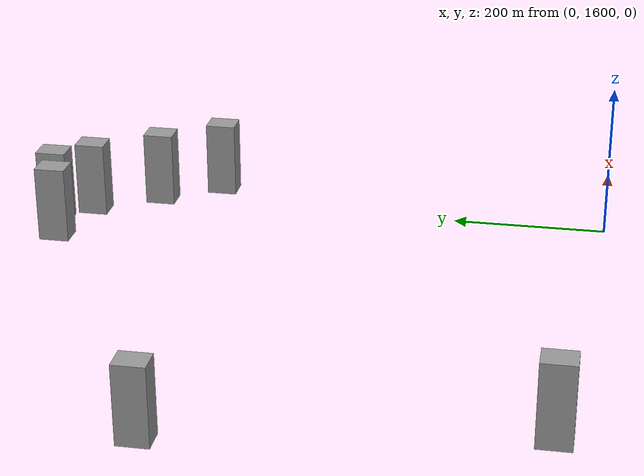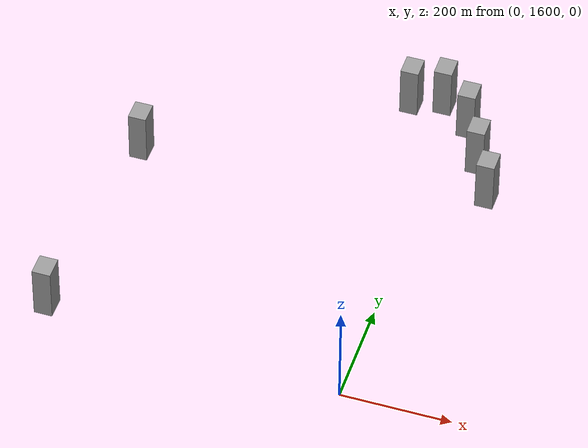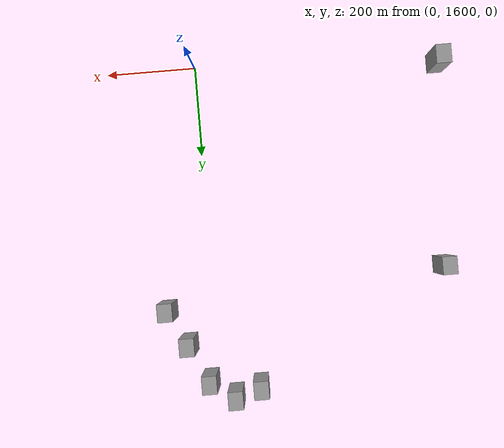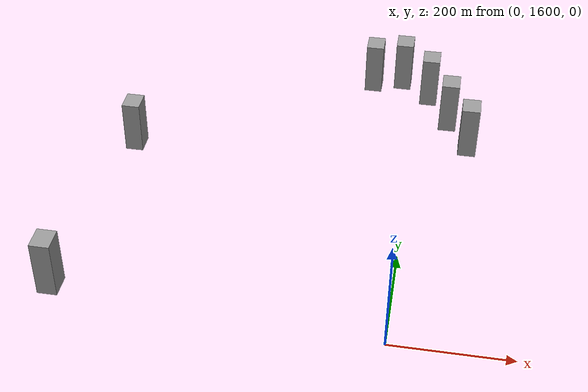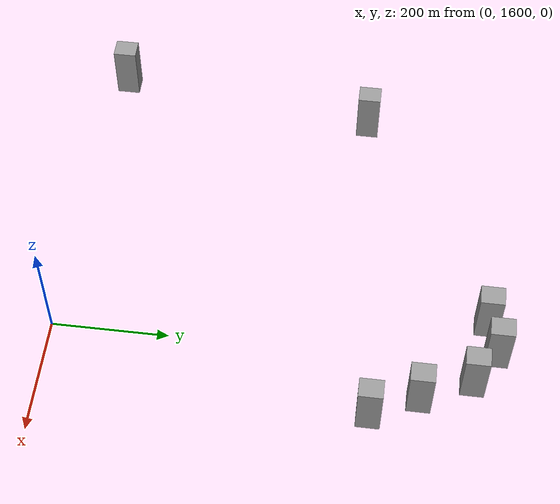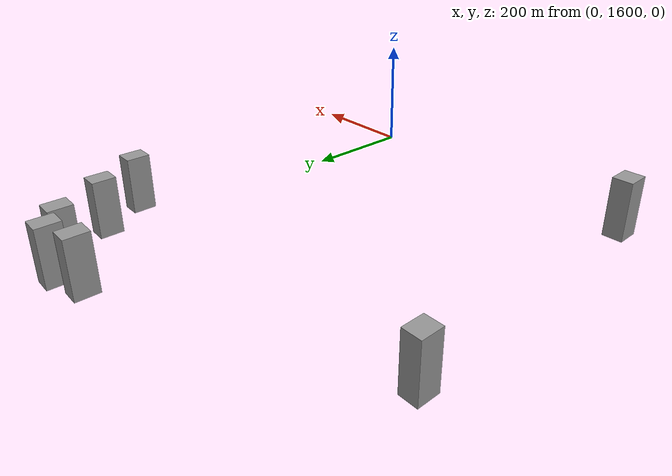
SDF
<sdf version="1.7">
 <world name="default">
  <model name="huge_building_92">
   <link name="link">
    <inertial>
     <mass>137299</mass>
     <inertia>
      <ixx>1.37911e+08</ixx>
      <ixy>0</ixy>
      <ixz>0</ixz>
      <iyy>1.32035e+08</iyy>
      <iyz>0</iyz>
      <izz>3.13216e+07</izz>
     </inertia>
    </inertial>
    <visual name="visual">
     <geometry><box><size>33.3468 40.3177 102.117</size></box></geometry>
     <material>
      <script><name>Gazebo/Grey</name><uri>file://media/materials/scripts/gazebo.material</uri></script>
      <shader type="pixel"/>
     </material>
    </visual>
    <collision name="collision">
     <geometry><box><size>33.3468 40.3177 102.117</size></box></geometry>
     <surface>
      <friction>
       <ode><mu>1</mu><mu2>1</mu2><fdir1>0 0 0</fdir1><slip1>0</slip1><slip2>0</slip2></ode>
       <torsional>
        <coefficient>1</coefficient>
        <patch_radius>0</patch_radius>
        <surface_radius>0</surface_radius>
        <use_patch_radius>1</use_patch_radius>
        <ode><slip>0</slip></ode>
       </torsional>
      </friction>
      <bounce><restitution_coefficient>0</restitution_coefficient><threshold>1e+06</threshold></bounce>
      <contact>
       <collide_without_contact>0</collide_without_contact>
       <collide_without_contact_bitmask>1</collide_without_contact_bitmask>
       <collide_bitmask>1</collide_bitmask>
       <ode>
        <soft_cfm>0</soft_cfm>
        <soft_erp>0.2</soft_erp>
        <kp>1e+13</kp>
        <kd>1</kd>
        <max_vel>0.01</max_vel>
        <min_depth>0</min_depth>
       </ode>
       <bullet>
        <split_impulse>1</split_impulse>
        <split_impulse_penetration_threshold>-0.01</split_impulse_penetration_threshold>
        <soft_cfm>0</soft_cfm>
        <soft_erp>0.2</soft_erp>
        <kp>1e+13</kp>
        <kd>1</kd>
       </bullet>
      </contact>
     </surface>
    </collision>
   </link>
   <static>0</static>
   <pose>-94.3946 2329.54 30 0 -0 0</pose>
  </model>
  <model name="huge_building_93">
   <link name="link">
    <inertial>
     <mass>137299</mass>
     <inertia>
      <ixx>1.37911e+08</ixx>
      <ixy>0</ixy>
      <ixz>0</ixz>
      <iyy>1.32035e+08</iyy>
      <iyz>0</iyz>
      <izz>3.13216e+07</izz>
     </inertia>
    </inertial>
    <visual name="visual">
     <geometry><box><size>33.3468 40.3177 102.117</size></box></geometry>
     <material>
      <script><name>Gazebo/Grey</name><uri>file://media/materials/scripts/gazebo.material</uri></script>
      <shader type="pixel"/>
     </material>
    </visual>
    <collision name="collision">
     <geometry><box><size>33.3468 40.3177 102.117</size></box></geometry>
     <surface>
      <friction>
       <ode><mu>1</mu><mu2>1</mu2><fdir1>0 0 0</fdir1><slip1>0</slip1><slip2>0</slip2></ode>
       <torsional>
        <coefficient>1</coefficient>
        <patch_radius>0</patch_radius>
        <surface_radius>0</surface_radius>
        <use_patch_radius>1</use_patch_radius>
        <ode><slip>0</slip></ode>
       </torsional>
      </friction>
      <bounce><restitution_coefficient>0</restitution_coefficient><threshold>1e+06</threshold></bounce>
      <contact>
       <collide_without_contact>0</collide_without_contact>
       <collide_without_contact_bitmask>1</collide_without_contact_bitmask>
       <collide_bitmask>1</collide_bitmask>
       <ode>
        <soft_cfm>0</soft_cfm>
        <soft_erp>0.2</soft_erp>
        <kp>1e+13</kp>
        <kd>1</kd>
        <max_vel>0.01</max_vel>
        <min_depth>0</min_depth>
       </ode>
       <bullet>
        <split_impulse>1</split_impulse>
        <split_impulse_penetration_threshold>-0.01</split_impulse_penetration_threshold>
        <soft_cfm>0</soft_cfm>
        <soft_erp>0.2</soft_erp>
        <kp>1e+13</kp>
        <kd>1</kd>
       </bullet>
      </contact>
     </surface>
    </collision>
   </link>
   <static>0</static>
   <pose>-36.6277 2347.89 29 0 -0 0</pose>
  </model>
  <model name="huge_building_94">
   <link name="link">
    <inertial>
     <mass>137299</mass>
     <inertia>
      <ixx>1.37911e+08</ixx>
      <ixy>0</ixy>
      <ixz>0</ixz>
      <iyy>1.32035e+08</iyy>
      <iyz>0</iyz>
      <izz>3.13216e+07</izz>
     </inertia>
    </inertial>
    <visual name="visual">
     <geometry><box><size>33.3468 40.3177 102.117</size></box></geometry>
     <material>
      <script><name>Gazebo/Grey</name><uri>file://media/materials/scripts/gazebo.material</uri></script>
      <shader type="pixel"/>
     </material>
    </visual>
    <collision name="collision">
     <geometry><box><size>33.3468 40.3177 102.117</size></box></geometry>
     <surface>
      <friction>
       <ode><mu>1</mu><mu2>1</mu2><fdir1>0 0 0</fdir1><slip1>0</slip1><slip2>0</slip2></ode>
       <torsional>
        <coefficient>1</coefficient>
        <patch_radius>0</patch_radius>
        <surface_radius>0</surface_radius>
        <use_patch_radius>1</use_patch_radius>
        <ode><slip>0</slip></ode>
       </torsional>
      </friction>
      <bounce><restitution_coefficient>0</restitution_coefficient><threshold>1e+06</threshold></bounce>
      <contact>
       <collide_without_contact>0</collide_without_contact>
       <collide_without_contact_bitmask>1</collide_without_contact_bitmask>
       <collide_bitmask>1</collide_bitmask>
       <ode>
        <soft_cfm>0</soft_cfm>
        <soft_erp>0.2</soft_erp>
        <kp>1e+13</kp>
        <kd>1</kd>
        <max_vel>0.01</max_vel>
        <min_depth>0</min_depth>
       </ode>
       <bullet>
        <split_impulse>1</split_impulse>
        <split_impulse_penetration_threshold>-0.01</split_impulse_penetration_threshold>
        <soft_cfm>0</soft_cfm>
        <soft_erp>0.2</soft_erp>
        <kp>1e+13</kp>
        <kd>1</kd>
       </bullet>
      </contact>
     </surface>
    </collision>
   </link>
   <static>0</static>
   <pose>18.8339 2310.99 21 0 -0 0</pose>
  </model>
  <model name="huge_building_95">
   <link name="link">
    <inertial>
     <mass>137299</mass>
     <inertia>
      <ixx>1.37911e+08</ixx>
      <ixy>0</ixy>
      <ixz>0</ixz>
      <iyy>1.32035e+08</iyy>
      <iyz>0</iyz>
      <izz>3.13216e+07</izz>
     </inertia>
    </inertial>
    <visual name="visual">
     <geometry><box><size>33.3468 40.3177 102.117</size></box></geometry>
     <material>
      <script><name>Gazebo/Grey</name><uri>file://media/materials/scripts/gazebo.material</uri></script>
      <shader type="pixel"/>
     </material>
    </visual>
    <collision name="collision">
     <geometry><box><size>33.3468 40.3177 102.117</size></box></geometry>
     <surface>
      <friction>
       <ode><mu>1</mu><mu2>1</mu2><fdir1>0 0 0</fdir1><slip1>0</slip1><slip2>0</slip2></ode>
       <torsional>
        <coefficient>1</coefficient>
        <patch_radius>0</patch_radius>
        <surface_radius>0</surface_radius>
        <use_patch_radius>1</use_patch_radius>
        <ode><slip>0</slip></ode>
       </torsional>
      </friction>
      <bounce><restitution_coefficient>0</restitution_coefficient><threshold>1e+06</threshold></bounce>
      <contact>
       <collide_without_contact>0</collide_without_contact>
       <collide_without_contact_bitmask>1</collide_without_contact_bitmask>
       <collide_bitmask>1</collide_bitmask>
       <ode>
        <soft_cfm>0</soft_cfm>
        <soft_erp>0.2</soft_erp>
        <kp>1e+13</kp>
        <kd>1</kd>
        <max_vel>0.01</max_vel>
        <min_depth>0</min_depth>
       </ode>
       <bullet>
        <split_impulse>1</split_impulse>
        <split_impulse_penetration_threshold>-0.01</split_impulse_penetration_threshold>
        <soft_cfm>0</soft_cfm>
        <soft_erp>0.2</soft_erp>
        <kp>1e+13</kp>
        <kd>1</kd>
       </bullet>
      </contact>
     </surface>
    </collision>
   </link>
   <static>0</static>
   <pose>61.4218 2224.31 25 0 -0 0</pose>
  </model>
  <model name="huge_building_96">
   <link name="link">
    <inertial>
     <mass>137299</mass>
     <inertia>
      <ixx>1.37911e+08</ixx>
      <ixy>0</ixy>
      <ixz>0</ixz>
      <iyy>1.32035e+08</iyy>
      <iyz>0</iyz>
      <izz>3.13216e+07</izz>
     </inertia>
    </inertial>
    <visual name="visual">
     <geometry><box><size>33.3468 40.3177 102.117</size></box></geometry>
     <material>
      <script><name>Gazebo/Grey</name><uri>file://media/materials/scripts/gazebo.material</uri></script>
      <shader type="pixel"/>
     </material>
    </visual>
    <collision name="collision">
     <geometry><box><size>33.3468 40.3177 102.117</size></box></geometry>
     <surface>
      <friction>
       <ode><mu>1</mu><mu2>1</mu2><fdir1>0 0 0</fdir1><slip1>0</slip1><slip2>0</slip2></ode>
       <torsional>
        <coefficient>1</coefficient>
        <patch_radius>0</patch_radius>
        <surface_radius>0</surface_radius>
        <use_patch_radius>1</use_patch_radius>
        <ode><slip>0</slip></ode>
       </torsional>
      </friction>
      <bounce><restitution_coefficient>0</restitution_coefficient><threshold>1e+06</threshold></bounce>
      <contact>
       <collide_without_contact>0</collide_without_contact>
       <collide_without_contact_bitmask>1</collide_without_contact_bitmask>
       <collide_bitmask>1</collide_bitmask>
       <ode>
        <soft_cfm>0</soft_cfm>
        <soft_erp>0.2</soft_erp>
        <kp>1e+13</kp>
        <kd>1</kd>
        <max_vel>0.01</max_vel>
        <min_depth>0</min_depth>
       </ode>
       <bullet>
        <split_impulse>1</split_impulse>
        <split_impulse_penetration_threshold>-0.01</split_impulse_penetration_threshold>
        <soft_cfm>0</soft_cfm>
        <soft_erp>0.2</soft_erp>
        <kp>1e+13</kp>
        <kd>1</kd>
       </bullet>
      </contact>
     </surface>
    </collision>
   </link>
   <static>0</static>
   <pose>102.552 2144.19 29 0 -0 0</pose>
  </model>
  <model name="huge_building_162">
   <link name="link">
    <inertial>
     <mass>137299</mass>
     <inertia>
      <ixx>1.37911e+08</ixx>
      <ixy>0</ixy>
      <ixz>0</ixz>
      <iyy>1.32035e+08</iyy>
      <iyz>0</iyz>
      <izz>3.13216e+07</izz>
     </inertia>
    </inertial>
    <visual name="visual">
     <geometry><box><size>33.3468 40.3177 102.117</size></box></geometry>
     <material>
      <script><name>Gazebo/Grey</name><uri>file://media/materials/scripts/gazebo.material</uri></script>
      <shader type="pixel"/>
     </material>
    </visual>
    <collision name="collision">
     <geometry><box><size>33.3468 40.3177 102.117</size></box></geometry>
     <surface>
      <friction>
       <ode><mu>1</mu><mu2>1</mu2><fdir1>0 0 0</fdir1><slip1>0</slip1><slip2>0</slip2></ode>
       <torsional>
        <coefficient>1</coefficient>
        <patch_radius>0</patch_radius>
        <surface_radius>0</surface_radius>
        <use_patch_radius>1</use_patch_radius>
        <ode><slip>0</slip></ode>
       </torsional>
      </friction>
      <bounce><restitution_coefficient>0</restitution_coefficient><threshold>1e+06</threshold></bounce>
      <contact>
       <collide_without_contact>0</collide_without_contact>
       <collide_without_contact_bitmask>1</collide_without_contact_bitmask>
       <collide_bitmask>1</collide_bitmask>
       <ode>
        <soft_cfm>0</soft_cfm>
        <soft_erp>0.2</soft_erp>
        <kp>1e+13</kp>
        <kd>1</kd>
        <max_vel>0.01</max_vel>
        <min_depth>0</min_depth>
       </ode>
       <bullet>
        <split_impulse>1</split_impulse>
        <split_impulse_penetration_threshold>-0.01</split_impulse_penetration_threshold>
        <soft_cfm>0</soft_cfm>
        <soft_erp>0.2</soft_erp>
        <kp>1e+13</kp>
        <kd>1</kd>
       </bullet>
      </contact>
     </surface>
    </collision>
   </link>
   <static>0</static>
   <pose>-544.521 1634.53 53 0 -0 0</pose>
  </model>
  <model name="huge_building_182">
   <link name="link">
    <inertial>
     <mass>137299</mass>
     <inertia>
      <ixx>1.37911e+08</ixx>
      <ixy>0</ixy>
      <ixz>0</ixz>
      <iyy>1.32035e+08</iyy>
      <iyz>0</iyz>
      <izz>3.13216e+07</izz>
     </inertia>
    </inertial>
    <visual name="visual">
     <geometry><box><size>33.3468 40.3177 102.117</size></box></geometry>
     <material>
      <script><name>Gazebo/Grey</name><uri>file://media/materials/scripts/gazebo.material</uri></script>
      <shader type="pixel"/>
     </material>
    </visual>
    <collision name="collision">
     <geometry><box><size>33.3468 40.3177 102.117</size></box></geometry>
     <surface>
      <friction>
       <ode><mu>1</mu><mu2>1</mu2><fdir1>0 0 0</fdir1><slip1>0</slip1><slip2>0</slip2></ode>
       <torsional>
        <coefficient>1</coefficient>
        <patch_radius>0</patch_radius>
        <surface_radius>0</surface_radius>
        <use_patch_radius>1</use_patch_radius>
        <ode><slip>0</slip></ode>
       </torsional>
      </friction>
      <bounce><restitution_coefficient>0</restitution_coefficient><threshold>1e+06</threshold></bounce>
      <contact>
       <collide_without_contact>0</collide_without_contact>
       <collide_without_contact_bitmask>1</collide_without_contact_bitmask>
       <collide_bitmask>1</collide_bitmask>
       <ode>
        <soft_cfm>0</soft_cfm>
        <soft_erp>0.2</soft_erp>
        <kp>1e+13</kp>
        <kd>1</kd>
        <max_vel>0.01</max_vel>
        <min_depth>0</min_depth>
       </ode>
       <bullet>
        <split_impulse>1</split_impulse>
        <split_impulse_penetration_threshold>-0.01</split_impulse_penetration_threshold>
        <soft_cfm>0</soft_cfm>
        <soft_erp>0.2</soft_erp>
        <kp>1e+13</kp>
        <kd>1</kd>
       </bullet>
      </contact>
     </surface>
    </collision>
   </link>
   <static>0</static>
   <pose>-533.903 2093.29 0 0 -0 0</pose>
  </model>
 </world>
</sdf>
